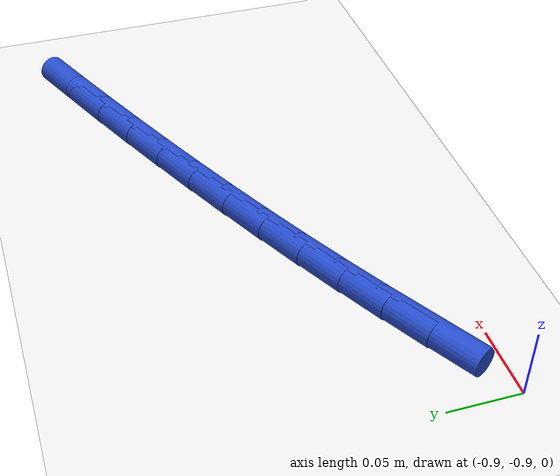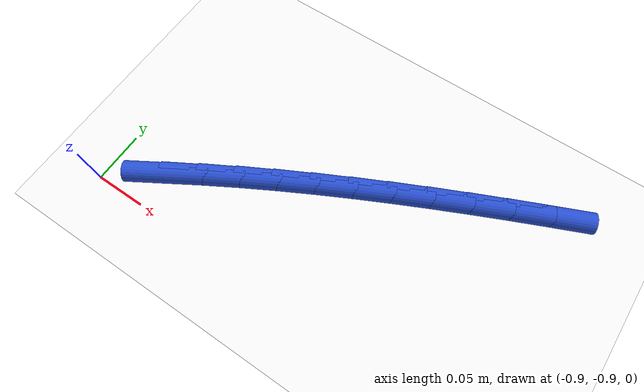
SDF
<sdf version="1.6">
 <world name="default">
  <model name="ground_plane">
   <static>1</static>
   <link name="link">
    <collision name="collision">
     <geometry><plane><normal>0 0 1</normal><size>100 100</size></plane></geometry>
     <surface><friction><ode><mu>100</mu><mu2>50</mu2></ode></friction></surface>
    </collision>
    <visual name="visual">
     <cast_shadows>0</cast_shadows>
     <geometry><plane><normal>0 0 1</normal><size>100 100</size></plane></geometry>
     <material>
      <script><uri>file://media/materials/scripts/gazebo.material</uri><name>Gazebo/WhiteGlow</name></script>
     </material>
    </visual>
   </link>
  </model>
  <model name="line">
   <link name="link_223">
    <pose>-0.8450462023105927 -0.8632342419303829 0.01 0 1.57 0.5317357584510772</pose>
    <collision name="collision">
     <geometry><cylinder><radius>0.01</radius><length>0.08</length></cylinder></geometry>
    </collision>
    <visual name="visual">
     <material>
      <script><name>Gazebo/Blue</name><uri>file://media/materials/scripts/gazebo.material</uri></script>
     </material>
     <geometry><cylinder><radius>0.01</radius><length>0.08</length></cylinder></geometry>
    </visual>
   </link>
   <link name="link_224">
    <pose>-0.8154777861100226 -0.8458405906208781 0.01 0 1.57 0.5139392345225913</pose>
    <collision name="collision">
     <geometry><cylinder><radius>0.01</radius><length>0.08</length></cylinder></geometry>
    </collision>
    <visual name="visual">
     <material>
      <script><name>Gazebo/Blue</name><uri>file://media/materials/scripts/gazebo.material</uri></script>
     </material>
     <geometry><cylinder><radius>0.01</radius><length>0.08</length></cylinder></geometry>
    </visual>
   </link>
   <link name="link_225">
    <pose>-0.7854536341955307 -0.8288906984290048 0.01 0 1.57 0.49731054069001546</pose>
    <collision name="collision">
     <geometry><cylinder><radius>0.01</radius><length>0.08</length></cylinder></geometry>
    </collision>
    <visual name="visual">
     <material>
      <script><name>Gazebo/Blue</name><uri>file://media/materials/scripts/gazebo.material</uri></script>
     </material>
     <geometry><cylinder><radius>0.01</radius><length>0.08</length></cylinder></geometry>
    </visual>
   </link>
   <link name="link_226">
    <pose>-0.7549827117381717 -0.8123506098476985 0.01 0 1.57 0.48185183333624654</pose>
    <collision name="collision">
     <geometry><cylinder><radius>0.01</radius><length>0.08</length></cylinder></geometry>
    </collision>
    <visual name="visual">
     <material>
      <script><name>Gazebo/Blue</name><uri>file://media/materials/scripts/gazebo.material</uri></script>
     </material>
     <geometry><cylinder><radius>0.01</radius><length>0.08</length></cylinder></geometry>
    </visual>
   </link>
   <link name="link_227">
    <pose>-0.7240739839090004 -0.7961863693698933 0.01 0 1.57 0.4675601696359078</pose>
    <collision name="collision">
     <geometry><cylinder><radius>0.01</radius><length>0.08</length></cylinder></geometry>
    </collision>
    <visual name="visual">
     <material>
      <script><name>Gazebo/Blue</name><uri>file://media/materials/scripts/gazebo.material</uri></script>
     </material>
     <geometry><cylinder><radius>0.01</radius><length>0.08</length></cylinder></geometry>
    </visual>
   </link>
   <link name="link_228">
    <pose>-0.692736415879072 -0.7803640214885249 0.01 0 1.57 0.45442823263692816</pose>
    <collision name="collision">
     <geometry><cylinder><radius>0.01</radius><length>0.08</length></cylinder></geometry>
    </collision>
    <visual name="visual">
     <material>
      <script><name>Gazebo/Blue</name><uri>file://media/materials/scripts/gazebo.material</uri></script>
     </material>
     <geometry><cylinder><radius>0.01</radius><length>0.08</length></cylinder></geometry>
    </visual>
   </link>
   <link name="link_229">
    <pose>-0.6609789728194406 -0.7648496106965277 0.01 0 1.57 0.4424450158273842</pose>
    <collision name="collision">
     <geometry><cylinder><radius>0.01</radius><length>0.08</length></cylinder></geometry>
    </collision>
    <visual name="visual">
     <material>
      <script><name>Gazebo/Blue</name><uri>file://media/materials/scripts/gazebo.material</uri></script>
     </material>
     <geometry><cylinder><radius>0.01</radius><length>0.08</length></cylinder></geometry>
    </visual>
   </link>
   <link name="link_230">
    <pose>-0.628810619901163 -0.7496091814868376 0.01 0 1.57 0.4315964557780358</pose>
    <collision name="collision">
     <geometry><cylinder><radius>0.01</radius><length>0.08</length></cylinder></geometry>
    </collision>
    <visual name="visual">
     <material>
      <script><name>Gazebo/Blue</name><uri>file://media/materials/scripts/gazebo.material</uri></script>
     </material>
     <geometry><cylinder><radius>0.01</radius><length>0.08</length></cylinder></geometry>
    </visual>
   </link>
   <link name="link_231">
    <pose>-0.5962403222952934 -0.734608778352389 0.01 0 1.57 0.42186600568672544</pose>
    <collision name="collision">
     <geometry><cylinder><radius>0.01</radius><length>0.08</length></cylinder></geometry>
    </collision>
    <visual name="visual">
     <material>
      <script><name>Gazebo/Blue</name><uri>file://media/materials/scripts/gazebo.material</uri></script>
     </material>
     <geometry><cylinder><radius>0.01</radius><length>0.08</length></cylinder></geometry>
    </visual>
   </link>
   <link name="link_232">
    <pose>-0.5632770451728865 -0.7198144457861171 0.01 0 1.57 0.41323514617133844</pose>
    <collision name="collision">
     <geometry><cylinder><radius>0.01</radius><length>0.08</length></cylinder></geometry>
    </collision>
    <visual name="visual">
     <material>
      <script><name>Gazebo/Blue</name><uri>file://media/materials/scripts/gazebo.material</uri></script>
     </material>
     <geometry><cylinder><radius>0.01</radius><length>0.08</length></cylinder></geometry>
    </visual>
   </link>
   <link name="link_233">
    <pose>-0.5299297537049977 -0.705192228280957 0.01 0 1.57 0.4056838324601998</pose>
    <collision name="collision">
     <geometry><cylinder><radius>0.01</radius><length>0.08</length></cylinder></geometry>
    </collision>
    <visual name="visual">
     <material>
      <script><name>Gazebo/Blue</name><uri>file://media/materials/scripts/gazebo.material</uri></script>
     </material>
     <geometry><cylinder><radius>0.01</radius><length>0.08</length></cylinder></geometry>
    </visual>
   </link>
  </model>
 </world>
</sdf>
